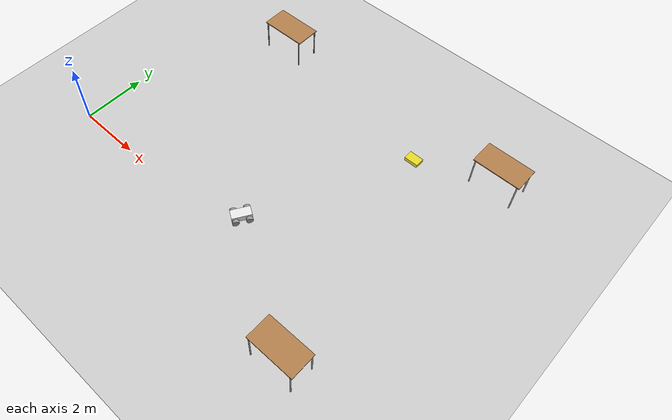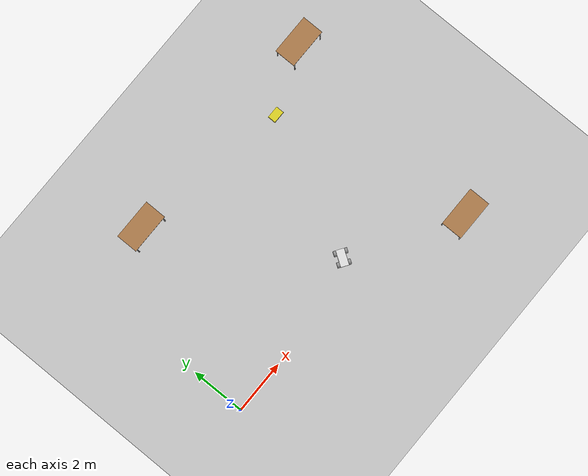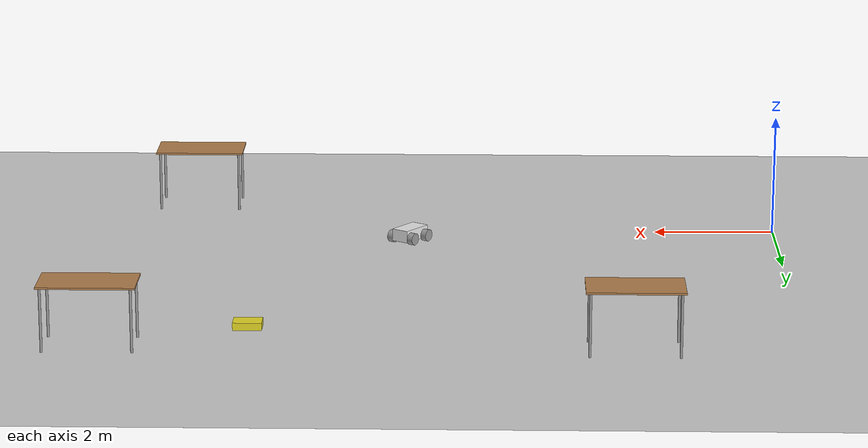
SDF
<sdf version="1.6">
 <world name="default">
  <model name="ground_plane">
   <static>1</static>
   <link name="link">
    <collision name="collision">
     <geometry><plane><normal>0 0 1</normal><size>100 100</size></plane></geometry>
     <surface>
      <contact><collide_bitmask>65535</collide_bitmask></contact>
      <friction><ode><mu>100</mu><mu2>50</mu2></ode></friction>
     </surface>
    </collision>
    <visual name="visual">
     <cast_shadows>0</cast_shadows>
     <geometry><plane><normal>0 0 1</normal><size>100 100</size></plane></geometry>
     <material>
      <script><uri>file://media/materials/scripts/gazebo.material</uri><name>Gazebo/Grey</name></script>
     </material>
    </visual>
   </link>
  </model>
  <model name="MobileRobot_0">
   <link name="link_1">
    <pose>4.60881 0.240898 0.11 1.57078 1.55257 0.459419</pose>
    <inertial>
     <mass>1</mass>
     <inertia><ixx>0.145833</ixx><ixy>0</ixy><ixz>0</ixz><iyy>0.145833</iyy><iyz>0</iyz><izz>0.125</izz></inertia>
    </inertial>
    <visual name="visual">
     <geometry><cylinder><radius>0.1</radius><length>0.1</length></cylinder></geometry>
     <material>
      <lighting>1</lighting>
      <script><uri>file://media/materials/scripts/gazebo.material</uri><name>Gazebo/Grey</name></script>
      <shader type="pixel"><normal_map>__default__</normal_map></shader>
      <ambient>0 0 0 1</ambient>
      <diffuse>0.7 0.7 0.7 1</diffuse>
      <specular>0.01 0.01 0.01 1</specular>
      <emissive>0 0 0 1</emissive>
     </material>
    </visual>
    <collision name="collision">
     <geometry><cylinder><radius>0.1</radius><length>0.1</length></cylinder></geometry>
     <surface>
      <friction>
       <ode><mu>1</mu><mu2>1</mu2><fdir1>0 0 0</fdir1><slip1>0</slip1><slip2>0</slip2></ode>
       <torsional>
        <coefficient>1</coefficient>
        <patch_radius>0</patch_radius>
        <surface_radius>0</surface_radius>
        <use_patch_radius>1</use_patch_radius>
        <ode><slip>0</slip></ode>
       </torsional>
      </friction>
      <bounce><restitution_coefficient>0</restitution_coefficient><threshold>1e+06</threshold></bounce>
      <contact>
       <collide_without_contact>0</collide_without_contact>
       <collide_without_contact_bitmask>1</collide_without_contact_bitmask>
       <collide_bitmask>1</collide_bitmask>
       <ode>
        <soft_cfm>0</soft_cfm>
        <soft_erp>0.2</soft_erp>
        <kp>1e+13</kp>
        <kd>1</kd>
        <max_vel>0.01</max_vel>
        <min_depth>0</min_depth>
       </ode>
       <bullet>
        <split_impulse>1</split_impulse>
        <split_impulse_penetration_threshold>-0.01</split_impulse_penetration_threshold>
        <soft_cfm>0</soft_cfm>
        <soft_erp>0.2</soft_erp>
        <kp>1e+13</kp>
        <kd>1</kd>
       </bullet>
      </contact>
     </surface>
    </collision>
   </link>
   <link name="link_1_clone">
    <pose>4.25025 0.063593 0.1 1.5708 0.106267 0.460072</pose>
    <inertial>
     <mass>1</mass>
     <inertia><ixx>0.145833</ixx><ixy>0</ixy><ixz>0</ixz><iyy>0.145833</iyy><iyz>0</iyz><izz>0.125</izz></inertia>
    </inertial>
    <visual name="visual">
     <geometry><cylinder><radius>0.1</radius><length>0.1</length></cylinder></geometry>
     <material>
      <lighting>1</lighting>
      <script><uri>file://media/materials/scripts/gazebo.material</uri><name>Gazebo/Grey</name></script>
      <shader type="pixel"><normal_map>__default__</normal_map></shader>
      <ambient>0 0 0 1</ambient>
      <diffuse>0.7 0.7 0.7 1</diffuse>
      <specular>0.01 0.01 0.01 1</specular>
      <emissive>0 0 0 1</emissive>
     </material>
    </visual>
    <collision name="collision">
     <geometry><cylinder><radius>0.1</radius><length>0.1</length></cylinder></geometry>
     <surface>
      <friction>
       <ode><mu>1</mu><mu2>1</mu2><fdir1>0 0 0</fdir1><slip1>0</slip1><slip2>0</slip2></ode>
       <torsional>
        <coefficient>1</coefficient>
        <patch_radius>0</patch_radius>
        <surface_radius>0</surface_radius>
        <use_patch_radius>1</use_patch_radius>
        <ode><slip>0</slip></ode>
       </torsional>
      </friction>
      <bounce><restitution_coefficient>0</restitution_coefficient><threshold>1e+06</threshold></bounce>
      <contact>
       <collide_without_contact>0</collide_without_contact>
       <collide_without_contact_bitmask>1</collide_without_contact_bitmask>
       <collide_bitmask>1</collide_bitmask>
       <ode>
        <soft_cfm>0</soft_cfm>
        <soft_erp>0.2</soft_erp>
        <kp>1e+13</kp>
        <kd>1</kd>
        <max_vel>0.01</max_vel>
        <min_depth>0</min_depth>
       </ode>
       <bullet>
        <split_impulse>1</split_impulse>
        <split_impulse_penetration_threshold>-0.01</split_impulse_penetration_threshold>
        <soft_cfm>0</soft_cfm>
        <soft_erp>0.2</soft_erp>
        <kp>1e+13</kp>
        <kd>1</kd>
       </bullet>
      </contact>
     </surface>
    </collision>
   </link>
   <link name="link_1_clone_0">
    <pose>4.7862 -0.11769 0.1 -1.5708 0.764191 -2.68152</pose>
    <inertial>
     <mass>1</mass>
     <inertia><ixx>0.145833</ixx><ixy>0</ixy><ixz>0</ixz><iyy>0.145833</iyy><iyz>0</iyz><izz>0.125</izz></inertia>
    </inertial>
    <visual name="visual">
     <geometry><cylinder><radius>0.1</radius><length>0.1</length></cylinder></geometry>
     <material>
      <lighting>1</lighting>
      <script><uri>file://media/materials/scripts/gazebo.material</uri><name>Gazebo/Grey</name></script>
      <shader type="pixel"><normal_map>__default__</normal_map></shader>
      <ambient>0 0 0 1</ambient>
      <diffuse>0.7 0.7 0.7 1</diffuse>
      <specular>0.01 0.01 0.01 1</specular>
      <emissive>0 0 0 1</emissive>
     </material>
    </visual>
    <collision name="collision">
     <geometry><cylinder><radius>0.1</radius><length>0.1</length></cylinder></geometry>
     <surface>
      <friction>
       <ode><mu>1</mu><mu2>1</mu2><fdir1>0 0 0</fdir1><slip1>0</slip1><slip2>0</slip2></ode>
       <torsional>
        <coefficient>1</coefficient>
        <patch_radius>0</patch_radius>
        <surface_radius>0</surface_radius>
        <use_patch_radius>1</use_patch_radius>
        <ode><slip>0</slip></ode>
       </torsional>
      </friction>
      <bounce><restitution_coefficient>0</restitution_coefficient><threshold>1e+06</threshold></bounce>
      <contact>
       <collide_without_contact>0</collide_without_contact>
       <collide_without_contact_bitmask>1</collide_without_contact_bitmask>
       <collide_bitmask>1</collide_bitmask>
       <ode>
        <soft_cfm>0</soft_cfm>
        <soft_erp>0.2</soft_erp>
        <kp>1e+13</kp>
        <kd>1</kd>
        <max_vel>0.01</max_vel>
        <min_depth>0</min_depth>
       </ode>
       <bullet>
        <split_impulse>1</split_impulse>
        <split_impulse_penetration_threshold>-0.01</split_impulse_penetration_threshold>
        <soft_cfm>0</soft_cfm>
        <soft_erp>0.2</soft_erp>
        <kp>1e+13</kp>
        <kd>1</kd>
       </bullet>
      </contact>
     </surface>
    </collision>
   </link>
   <link name="link_1_clone_1">
    <pose>4.42767 -0.295054 0.1 -1.5708 1.14063 -2.68152</pose>
    <inertial>
     <mass>1</mass>
     <inertia><ixx>0.145833</ixx><ixy>0</ixy><ixz>0</ixz><iyy>0.145833</iyy><iyz>0</iyz><izz>0.125</izz></inertia>
    </inertial>
    <visual name="visual">
     <geometry><cylinder><radius>0.1</radius><length>0.1</length></cylinder></geometry>
     <material>
      <lighting>1</lighting>
      <script><uri>file://media/materials/scripts/gazebo.material</uri><name>Gazebo/Grey</name></script>
      <shader type="pixel"><normal_map>__default__</normal_map></shader>
      <ambient>0 0 0 1</ambient>
      <diffuse>0.7 0.7 0.7 1</diffuse>
      <specular>0.01 0.01 0.01 1</specular>
      <emissive>0 0 0 1</emissive>
     </material>
    </visual>
    <collision name="collision">
     <geometry><cylinder><radius>0.1</radius><length>0.1</length></cylinder></geometry>
     <surface>
      <friction>
       <ode><mu>1</mu><mu2>1</mu2><fdir1>0 0 0</fdir1><slip1>0</slip1><slip2>0</slip2></ode>
       <torsional>
        <coefficient>1</coefficient>
        <patch_radius>0</patch_radius>
        <surface_radius>0</surface_radius>
        <use_patch_radius>1</use_patch_radius>
        <ode><slip>0</slip></ode>
       </torsional>
      </friction>
      <bounce><restitution_coefficient>0</restitution_coefficient><threshold>1e+06</threshold></bounce>
      <contact>
       <collide_without_contact>0</collide_without_contact>
       <collide_without_contact_bitmask>1</collide_without_contact_bitmask>
       <collide_bitmask>1</collide_bitmask>
       <ode>
        <soft_cfm>0</soft_cfm>
        <soft_erp>0.2</soft_erp>
        <kp>1e+13</kp>
        <kd>1</kd>
        <max_vel>0.01</max_vel>
        <min_depth>0</min_depth>
       </ode>
       <bullet>
        <split_impulse>1</split_impulse>
        <split_impulse_penetration_threshold>-0.01</split_impulse_penetration_threshold>
        <soft_cfm>0</soft_cfm>
        <soft_erp>0.2</soft_erp>
        <kp>1e+13</kp>
        <kd>1</kd>
       </bullet>
      </contact>
     </surface>
    </collision>
   </link>
   <link name="link_3">
    <pose>4.51822 -0.027048 0.15 0 -0 0.459401</pose>
    <inertial>
     <mass>1</mass>
     <inertia>
      <ixx>0.166667</ixx>
      <ixy>0</ixy>
      <ixz>0</ixz>
      <iyy>0.166667</iyy>
      <iyz>0</iyz>
      <izz>0.166667</izz>
     </inertia>
    </inertial>
    <visual name="visual">
     <geometry><box><size>0.6 0.3 0.2</size></box></geometry>
     <material>
      <lighting>1</lighting>
      <script><uri>file://media/materials/scripts/gazebo.material</uri><name>Gazebo/White</name></script>
      <shader type="pixel"><normal_map>__default__</normal_map></shader>
      <ambient>0.0 0.7 0.7 1</ambient>
      <diffuse>0.7 0.7 0.7 1</diffuse>
      <specular>0.01 0.01 0.01 1</specular>
      <emissive>0 0 0 1</emissive>
     </material>
    </visual>
    <collision name="collision">
     <geometry><box><size>0.6 0.3 0.2</size></box></geometry>
     <surface>
      <friction>
       <ode><mu>1</mu><mu2>1</mu2><fdir1>0 0 0</fdir1><slip1>0</slip1><slip2>0</slip2></ode>
       <torsional>
        <coefficient>1</coefficient>
        <patch_radius>0</patch_radius>
        <surface_radius>0</surface_radius>
        <use_patch_radius>1</use_patch_radius>
        <ode><slip>0</slip></ode>
       </torsional>
      </friction>
      <bounce><restitution_coefficient>0</restitution_coefficient><threshold>1e+06</threshold></bounce>
      <contact>
       <collide_without_contact>0</collide_without_contact>
       <collide_without_contact_bitmask>1</collide_without_contact_bitmask>
       <collide_bitmask>1</collide_bitmask>
       <ode>
        <soft_cfm>0</soft_cfm>
        <soft_erp>0.2</soft_erp>
        <kp>1e+13</kp>
        <kd>1</kd>
        <max_vel>0.01</max_vel>
        <min_depth>0</min_depth>
       </ode>
       <bullet>
        <split_impulse>1</split_impulse>
        <split_impulse_penetration_threshold>-0.01</split_impulse_penetration_threshold>
        <soft_cfm>0</soft_cfm>
        <soft_erp>0.2</soft_erp>
        <kp>1e+13</kp>
        <kd>1</kd>
       </bullet>
      </contact>
     </surface>
    </collision>
   </link>
   <joint name="link_3_JOINT_1" type="revolute">
    <parent>link_3</parent>
    <child>link_1_clone</child>
    <axis>
     <xyz>0 0 1</xyz>
     <use_parent_model_frame>0</use_parent_model_frame>
     <limit>
      <lower>-1.79769e+308</lower>
      <upper>1.79769e+308</upper>
      <effort>-1</effort>
      <velocity>-1</velocity>
     </limit>
     <dynamics>
      <spring_reference>0</spring_reference>
      <spring_stiffness>0</spring_stiffness>
      <damping>0</damping>
      <friction>0</friction>
     </dynamics>
    </axis>
    <physics>
     <ode><limit><cfm>0</cfm><erp>0.2</erp></limit><suspension><cfm>0</cfm><erp>0.2</erp></suspension></ode>
    </physics>
   </joint>
   <joint name="link_3_JOINT_2" type="revolute">
    <parent>link_3</parent>
    <child>link_1</child>
    <axis>
     <xyz>0 0 1</xyz>
     <use_parent_model_frame>0</use_parent_model_frame>
     <limit>
      <lower>-1.79769e+308</lower>
      <upper>1.79769e+308</upper>
      <effort>-1</effort>
      <velocity>-1</velocity>
     </limit>
     <dynamics>
      <spring_reference>0</spring_reference>
      <spring_stiffness>0</spring_stiffness>
      <damping>0</damping>
      <friction>0</friction>
     </dynamics>
    </axis>
    <physics>
     <ode><limit><cfm>0</cfm><erp>0.2</erp></limit><suspension><cfm>0</cfm><erp>0.2</erp></suspension></ode>
    </physics>
   </joint>
   <joint name="link_3_JOINT_3" type="revolute">
    <parent>link_3</parent>
    <child>link_1_clone_0</child>
    <axis>
     <xyz>0 0 1</xyz>
     <use_parent_model_frame>0</use_parent_model_frame>
     <limit>
      <lower>-1.79769e+308</lower>
      <upper>1.79769e+308</upper>
      <effort>-1</effort>
      <velocity>-1</velocity>
     </limit>
     <dynamics>
      <spring_reference>0</spring_reference>
      <spring_stiffness>0</spring_stiffness>
      <damping>0</damping>
      <friction>0</friction>
     </dynamics>
    </axis>
    <physics>
     <ode><limit><cfm>0</cfm><erp>0.2</erp></limit><suspension><cfm>0</cfm><erp>0.2</erp></suspension></ode>
    </physics>
   </joint>
   <joint name="link_3_JOINT_4" type="revolute">
    <parent>link_3</parent>
    <child>link_1_clone_1</child>
    <axis>
     <xyz>0 0 1</xyz>
     <use_parent_model_frame>0</use_parent_model_frame>
     <limit>
      <lower>-1.79769e+308</lower>
      <upper>1.79769e+308</upper>
      <effort>-1</effort>
      <velocity>-1</velocity>
     </limit>
     <dynamics>
      <spring_reference>0</spring_reference>
      <spring_stiffness>0</spring_stiffness>
      <damping>0</damping>
      <friction>0</friction>
     </dynamics>
    </axis>
    <physics>
     <ode><limit><cfm>0</cfm><erp>0.2</erp></limit><suspension><cfm>0</cfm><erp>0.2</erp></suspension></ode>
    </physics>
   </joint>
   <static>0</static>
   <pose>2.246079 -1.634734 -0.148984 0.015603 -0.031530 0.531844</pose>
  </model>
  <model name="table">
   <static>1</static>
   <link name="link">
    <collision name="surface">
     <pose>0 0 1 0 -0 0</pose>
     <geometry><box><size>1.5 0.8 0.03</size></box></geometry>
     <surface><friction><ode><mu>0.6</mu><mu2>0.6</mu2></ode></friction></surface>
    </collision>
    <visual name="visual1">
     <pose>0 0 1 0 -0 0</pose>
     <geometry><box><size>1.5 0.8 0.03</size></box></geometry>
     <material>
      <script><uri>file://media/materials/scripts/gazebo.material</uri><name>Gazebo/Wood</name></script>
     </material>
    </visual>
    <collision name="front_left_leg">
     <pose>0.68 0.38 0.5 0 -0 0</pose>
     <geometry><cylinder><radius>0.02</radius><length>1</length></cylinder></geometry>
    </collision>
    <visual name="front_left_leg">
     <pose>0.68 0.38 0.5 0 -0 0</pose>
     <geometry><cylinder><radius>0.02</radius><length>1</length></cylinder></geometry>
     <material>
      <script><uri>file://media/materials/scripts/gazebo.material</uri><name>Gazebo/Grey</name></script>
     </material>
    </visual>
    <collision name="front_right_leg">
     <pose>0.68 -0.38 0.5 0 -0 0</pose>
     <geometry><cylinder><radius>0.02</radius><length>1</length></cylinder></geometry>
    </collision>
    <visual name="front_right_leg">
     <pose>0.68 -0.38 0.5 0 -0 0</pose>
     <geometry><cylinder><radius>0.02</radius><length>1</length></cylinder></geometry>
     <material>
      <script><uri>file://media/materials/scripts/gazebo.material</uri><name>Gazebo/Grey</name></script>
     </material>
    </visual>
    <collision name="back_right_leg">
     <pose>-0.68 -0.38 0.5 0 -0 0</pose>
     <geometry><cylinder><radius>0.02</radius><length>1</length></cylinder></geometry>
    </collision>
    <visual name="back_right_leg">
     <pose>-0.68 -0.38 0.5 0 -0 0</pose>
     <geometry><cylinder><radius>0.02</radius><length>1</length></cylinder></geometry>
     <material>
      <script><uri>file://media/materials/scripts/gazebo.material</uri><name>Gazebo/Grey</name></script>
     </material>
    </visual>
    <collision name="back_left_leg">
     <pose>-0.68 0.38 0.5 0 -0 0</pose>
     <geometry><cylinder><radius>0.02</radius><length>1</length></cylinder></geometry>
    </collision>
    <visual name="back_left_leg">
     <pose>-0.68 0.38 0.5 0 -0 0</pose>
     <geometry><cylinder><radius>0.02</radius><length>1</length></cylinder></geometry>
     <material>
      <script><uri>file://media/materials/scripts/gazebo.material</uri><name>Gazebo/Grey</name></script>
     </material>
    </visual>
   </link>
   <pose>9.8632 -1.64363 0 0 0 0</pose>
  </model>
  <model name="table_1">
   <static>1</static>
   <link name="link">
    <collision name="surface">
     <pose>0 0 1 0 -0 0</pose>
     <geometry><box><size>1.5 0.8 0.03</size></box></geometry>
     <surface><friction><ode><mu>0.6</mu><mu2>0.6</mu2></ode></friction></surface>
    </collision>
    <visual name="visual1">
     <pose>0 0 1 0 -0 0</pose>
     <geometry><box><size>1.5 0.8 0.03</size></box></geometry>
     <material>
      <script><uri>file://media/materials/scripts/gazebo.material</uri><name>Gazebo/Wood</name></script>
     </material>
    </visual>
    <collision name="front_left_leg">
     <pose>0.68 0.38 0.5 0 -0 0</pose>
     <geometry><cylinder><radius>0.02</radius><length>1</length></cylinder></geometry>
    </collision>
    <visual name="front_left_leg">
     <pose>0.68 0.38 0.5 0 -0 0</pose>
     <geometry><cylinder><radius>0.02</radius><length>1</length></cylinder></geometry>
     <material>
      <script><uri>file://media/materials/scripts/gazebo.material</uri><name>Gazebo/Grey</name></script>
     </material>
    </visual>
    <collision name="front_right_leg">
     <pose>0.68 -0.38 0.5 0 -0 0</pose>
     <geometry><cylinder><radius>0.02</radius><length>1</length></cylinder></geometry>
    </collision>
    <visual name="front_right_leg">
     <pose>0.68 -0.38 0.5 0 -0 0</pose>
     <geometry><cylinder><radius>0.02</radius><length>1</length></cylinder></geometry>
     <material>
      <script><uri>file://media/materials/scripts/gazebo.material</uri><name>Gazebo/Grey</name></script>
     </material>
    </visual>
    <collision name="back_right_leg">
     <pose>-0.68 -0.38 0.5 0 -0 0</pose>
     <geometry><cylinder><radius>0.02</radius><length>1</length></cylinder></geometry>
    </collision>
    <visual name="back_right_leg">
     <pose>-0.68 -0.38 0.5 0 -0 0</pose>
     <geometry><cylinder><radius>0.02</radius><length>1</length></cylinder></geometry>
     <material>
      <script><uri>file://media/materials/scripts/gazebo.material</uri><name>Gazebo/Grey</name></script>
     </material>
    </visual>
    <collision name="back_left_leg">
     <pose>-0.68 0.38 0.5 0 -0 0</pose>
     <geometry><cylinder><radius>0.02</radius><length>1</length></cylinder></geometry>
    </collision>
    <visual name="back_left_leg">
     <pose>-0.68 0.38 0.5 0 -0 0</pose>
     <geometry><cylinder><radius>0.02</radius><length>1</length></cylinder></geometry>
     <material>
      <script><uri>file://media/materials/scripts/gazebo.material</uri><name>Gazebo/Grey</name></script>
     </material>
    </visual>
   </link>
   <pose>10.8177 6.39215 0 0 0 0</pose>
  </model>
  <model name="table_2">
   <static>1</static>
   <link name="link">
    <collision name="surface">
     <pose>0 0 1 0 -0 0</pose>
     <geometry><box><size>1.5 0.8 0.03</size></box></geometry>
     <surface><friction><ode><mu>0.6</mu><mu2>0.6</mu2></ode></friction></surface>
    </collision>
    <visual name="visual1">
     <pose>0 0 1 0 -0 0</pose>
     <geometry><box><size>1.5 0.8 0.03</size></box></geometry>
     <material>
      <script><uri>file://media/materials/scripts/gazebo.material</uri><name>Gazebo/Wood</name></script>
     </material>
    </visual>
    <collision name="front_left_leg">
     <pose>0.68 0.38 0.5 0 -0 0</pose>
     <geometry><cylinder><radius>0.02</radius><length>1</length></cylinder></geometry>
    </collision>
    <visual name="front_left_leg">
     <pose>0.68 0.38 0.5 0 -0 0</pose>
     <geometry><cylinder><radius>0.02</radius><length>1</length></cylinder></geometry>
     <material>
      <script><uri>file://media/materials/scripts/gazebo.material</uri><name>Gazebo/Grey</name></script>
     </material>
    </visual>
    <collision name="front_right_leg">
     <pose>0.68 -0.38 0.5 0 -0 0</pose>
     <geometry><cylinder><radius>0.02</radius><length>1</length></cylinder></geometry>
    </collision>
    <visual name="front_right_leg">
     <pose>0.68 -0.38 0.5 0 -0 0</pose>
     <geometry><cylinder><radius>0.02</radius><length>1</length></cylinder></geometry>
     <material>
      <script><uri>file://media/materials/scripts/gazebo.material</uri><name>Gazebo/Grey</name></script>
     </material>
    </visual>
    <collision name="back_right_leg">
     <pose>-0.68 -0.38 0.5 0 -0 0</pose>
     <geometry><cylinder><radius>0.02</radius><length>1</length></cylinder></geometry>
    </collision>
    <visual name="back_right_leg">
     <pose>-0.68 -0.38 0.5 0 -0 0</pose>
     <geometry><cylinder><radius>0.02</radius><length>1</length></cylinder></geometry>
     <material>
      <script><uri>file://media/materials/scripts/gazebo.material</uri><name>Gazebo/Grey</name></script>
     </material>
    </visual>
    <collision name="back_left_leg">
     <pose>-0.68 0.38 0.5 0 -0 0</pose>
     <geometry><cylinder><radius>0.02</radius><length>1</length></cylinder></geometry>
    </collision>
    <visual name="back_left_leg">
     <pose>-0.68 0.38 0.5 0 -0 0</pose>
     <geometry><cylinder><radius>0.02</radius><length>1</length></cylinder></geometry>
     <material>
      <script><uri>file://media/materials/scripts/gazebo.material</uri><name>Gazebo/Grey</name></script>
     </material>
    </visual>
   </link>
   <pose>2.60762 6.45728 0 0 0 0</pose>
  </model>
  <model name="unit_box_1">
   <pose>8.5 5.5 0.06 0 0 1.5708</pose>
   <link name="link">
    <inertial>
     <mass>1</mass>
     <inertia>
      <ixx>0.0416667</ixx>
      <ixy>0</ixy>
      <ixz>0</ixz>
      <iyy>0.0566667</iyy>
      <iyz>0</iyz>
      <izz>0.0683333</izz>
     </inertia>
    </inertial>
    <collision name="collision">
     <geometry><box><size>0.3 0.45 0.12</size></box></geometry>
     <surface>
      <friction><ode><mu>1</mu><mu2>1</mu2></ode></friction>
      <contact><ode><kp>1e+07</kp><kd>1</kd><min_depth>0.001</min_depth><max_vel>0.1</max_vel></ode></contact>
     </surface>
    </collision>
    <visual name="visual">
     <geometry><box><size>0.3 0.45 0.12</size></box></geometry>
     <material>
      <lighting>1</lighting>
      <script><uri>file://media/materials/scripts/gazebo.material</uri><name>Gazebo/Yellow</name></script>
      <shader type="pixel"><normal_map>__default__</normal_map></shader>
      <ambient>0.6 0.5 0.3 1</ambient>
      <diffuse>0.6 0.5 0.3 1</diffuse>
      <specular>0.01 0.01 0.01 1</specular>
      <emissive>0 0 0 1</emissive>
     </material>
    </visual>
   </link>
  </model>
 </world>
</sdf>
